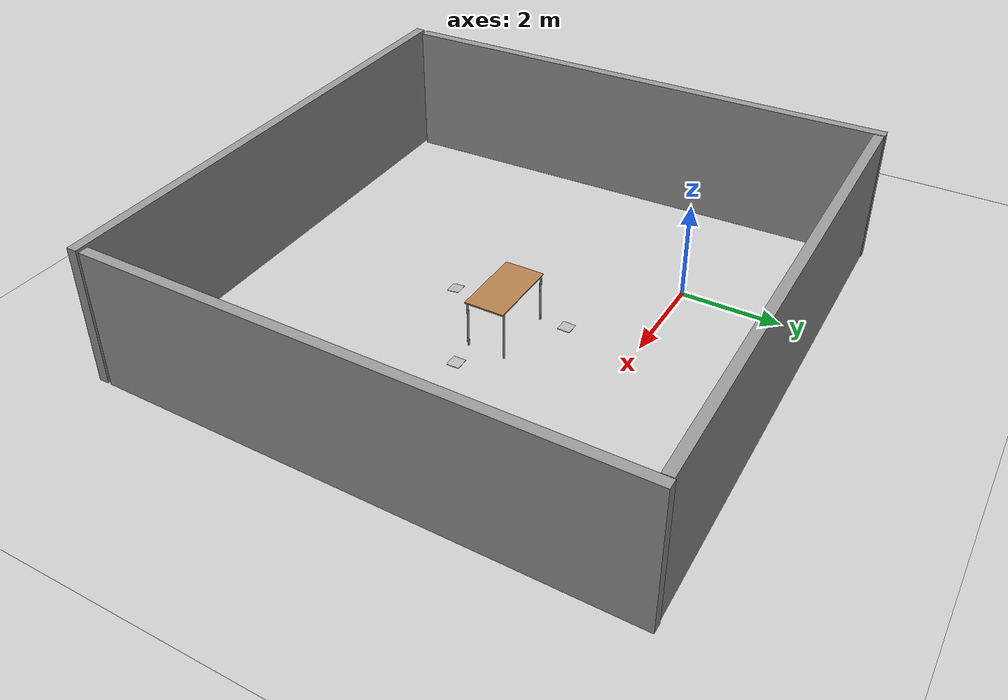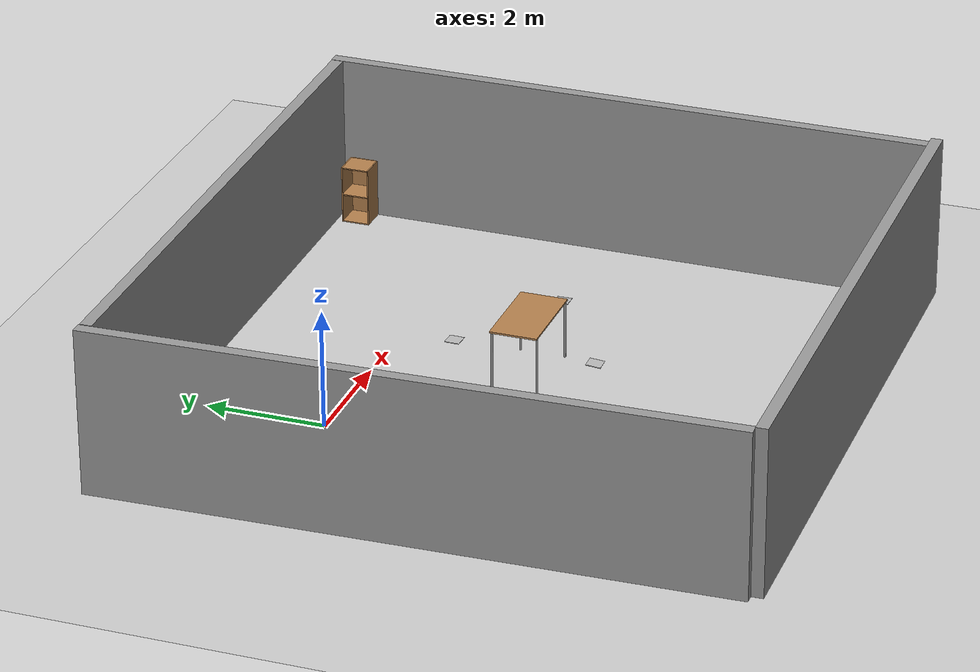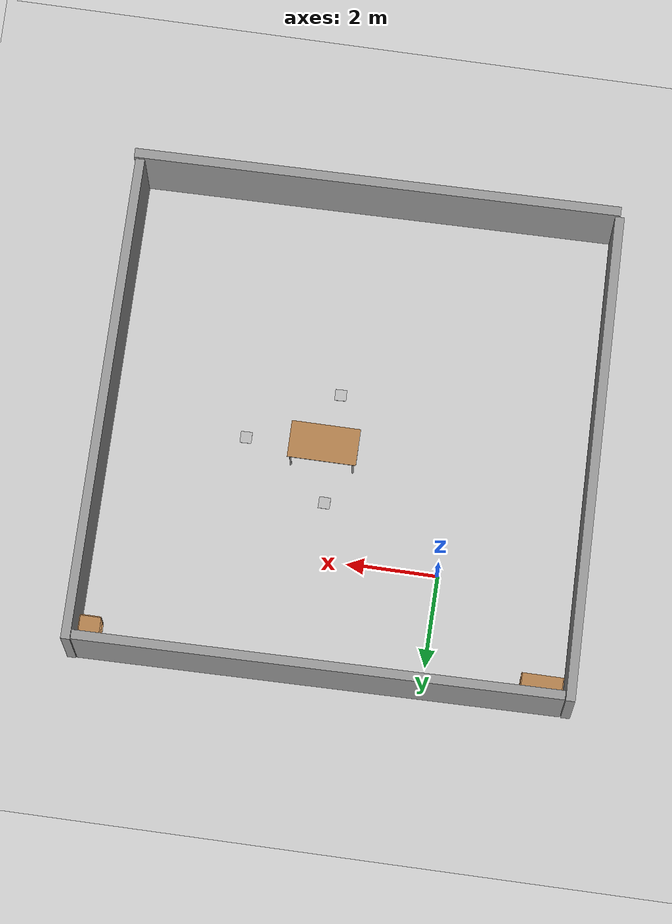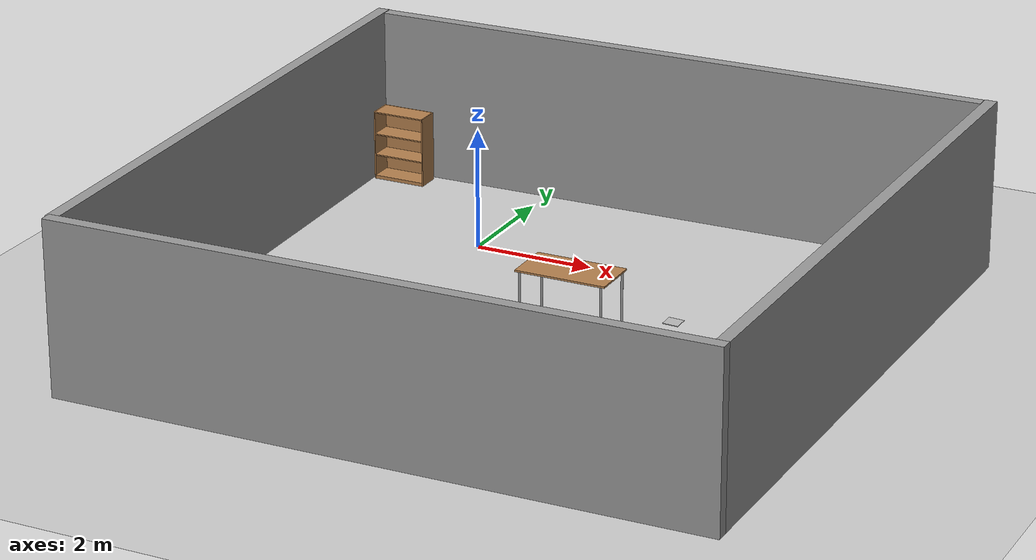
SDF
<sdf version="1.4">
 <world name="default">
  <plugin name="xbot2_clock" filename="libxbot2_gz_clock.so"/>
  <gravity>0 0 -9.81</gravity>
  <model name="ground_plane">
   <static>true</static>
   <link name="link">
    <collision name="collision">
     <geometry><plane><normal>0 0 1</normal><size>100 100</size></plane></geometry>
     <surface><friction><ode><mu>1</mu><mu2>1</mu2></ode></friction></surface>
    </collision>
    <visual name="visual">
     <cast_shadows>false</cast_shadows>
     <geometry><plane><normal>0 0 1</normal><size>100 100</size></plane></geometry>
     <material>
      <script><uri>file://media/materials/scripts/gazebo.material</uri><name>Gazebo/Grey</name></script>
     </material>
    </visual>
   </link>
  </model>
  <model name="Apriltag36_11_00000">
   <link name="main">
    <visual name="main_Visual">
     <geometry><box><size>0.25 0.25 0.01</size></box></geometry>
     <material>
      <script>
       <uri>model://Apriltag36_11_00000/materials/scripts</uri>
       <uri>model://Apriltag36_11_00000/materials/textures</uri>
       <name>Apriltag36_11_00000</name>
      </script>
     </material>
    </visual>
   </link>
   <static>1</static>
   <pose>2.61 -3.59993 0.456157 -3.04084 0 0.039</pose>
  </model>
  <model name="Apriltag36_11_00001">
   <link name="main">
    <visual name="main_Visual">
     <geometry><box><size>0.25 0.25 0.01</size></box></geometry>
     <material>
      <script>
       <uri>model://Apriltag36_11_00001/materials/scripts</uri>
       <uri>model://Apriltag36_11_00001/materials/textures</uri>
       <name>Apriltag36_11_00001</name>
      </script>
     </material>
    </visual>
   </link>
   <static>1</static>
   <pose>2.6349 -1.201776 0.454384 0.000466 0.009947 -0.0178</pose>
  </model>
  <model name="Apriltag36_11_00001">
   <pose>2.6349 -1.201776 0.454384 0.000466 0.009947 -0.0178</pose>
   <scale>1 1 1</scale>
   <link name="main">
    <pose>2.67069 -1.1249 0.464384 0 0.009878 0.0715</pose>
    <velocity>0 0 0 0 -0 0</velocity>
    <acceleration>0 0 0 0 -0 0</acceleration>
    <wrench>0 0 0 0 -0 0</wrench>
   </link>
  </model>
  <model name="Apriltag36_11_00002">
   <link name="main">
    <visual name="main_Visual">
     <geometry><box><size>0.25 0.25 0.01</size></box></geometry>
     <material>
      <script>
       <uri>model://Apriltag36_11_00002/materials/scripts</uri>
       <uri>model://Apriltag36_11_00002/materials/textures</uri>
       <name>Apriltag36_11_00002</name>
      </script>
     </material>
    </visual>
   </link>
   <static>1</static>
   <pose>4.51485 -2.39499 0.469182 -0.038 0.002418 -1.554151</pose>
  </model>
  <model name="Apriltag36_11_00002">
   <pose>4.51485 -2.39499 0.469182 -0.038 0.002418 -1.554151</pose>
   <scale>1 1 1</scale>
   <link name="main">
    <pose>4.51485 -2.39499 0.469182 0 0.038185 0</pose>
    <velocity>0 0 0 0 -0 0</velocity>
    <acceleration>0 0 0 0 -0 0</acceleration>
    <wrench>0 0 0 0 -0 0</wrench>
   </link>
  </model>
  <model name="grey_wall_1">
   <link name="link">
    <pose>1.87277 0 1.4 0 -0 0</pose>
    <inertial>
     <mass>1</mass>
     <inertia><ixx>1</ixx><ixy>0</ixy><ixz>0</ixz><iyy>1</iyy><iyz>0</iyz><izz>1</izz></inertia>
    </inertial>
    <visual name="visual">
     <cast_shadows>0</cast_shadows>
     <geometry><box><size>10.5 0.2 2.8</size></box></geometry>
     <material>
      <script>
       <uri>model://grey_wall/materials/scripts</uri>
       <uri>model://grey_wall/materials/textures</uri>
       <name>vrc/grey_wall</name>
      </script>
      <shader type="pixel"><normal_map>__default__</normal_map></shader>
      <ambient>1 1 1 1</ambient>
      <diffuse>1 1 1 1</diffuse>
      <specular>0 0 0 1</specular>
      <emissive>0 0 0 1</emissive>
     </material>
    </visual>
    <collision name="collision">
     <geometry><box><size>10.5 0.2 2.8</size></box></geometry>
     <surface>
      <friction>
       <ode><mu>1</mu><mu2>1</mu2><fdir1>0 0 0</fdir1><slip1>0</slip1><slip2>0</slip2></ode>
       <torsional>
        <coefficient>1</coefficient>
        <patch_radius>0</patch_radius>
        <surface_radius>0</surface_radius>
        <use_patch_radius>1</use_patch_radius>
        <ode><slip>0</slip></ode>
       </torsional>
      </friction>
      <bounce><restitution_coefficient>0</restitution_coefficient><threshold>1e+06</threshold></bounce>
      <contact>
       <collide_without_contact>0</collide_without_contact>
       <collide_without_contact_bitmask>1</collide_without_contact_bitmask>
       <collide_bitmask>1</collide_bitmask>
       <ode>
        <soft_cfm>0</soft_cfm>
        <soft_erp>0.2</soft_erp>
        <kp>1e+13</kp>
        <kd>1</kd>
        <max_vel>0.01</max_vel>
        <min_depth>0</min_depth>
       </ode>
       <bullet>
        <split_impulse>1</split_impulse>
        <split_impulse_penetration_threshold>-0.01</split_impulse_penetration_threshold>
        <soft_cfm>0</soft_cfm>
        <soft_erp>0.2</soft_erp>
        <kp>1e+13</kp>
        <kd>1</kd>
       </bullet>
      </contact>
     </surface>
    </collision>
   </link>
   <static>1</static>
   <pose>-3.04683 -0.70106 0 0 0 -1.54128</pose>
  </model>
  <model name="grey_wall_1_clone">
   <link name="link">
    <pose>1.87277 0 1.4 0 -0 0</pose>
    <inertial>
     <mass>1</mass>
     <inertia><ixx>1</ixx><ixy>0</ixy><ixz>0</ixz><iyy>1</iyy><iyz>0</iyz><izz>1</izz></inertia>
    </inertial>
    <visual name="visual">
     <cast_shadows>0</cast_shadows>
     <geometry><box><size>10.5 0.2 2.8</size></box></geometry>
     <material>
      <script>
       <uri>model://grey_wall/materials/scripts</uri>
       <uri>model://grey_wall/materials/textures</uri>
       <name>vrc/grey_wall</name>
      </script>
      <shader type="pixel"><normal_map>__default__</normal_map></shader>
      <ambient>1 1 1 1</ambient>
      <diffuse>1 1 1 1</diffuse>
      <specular>0 0 0 1</specular>
      <emissive>0 0 0 1</emissive>
     </material>
    </visual>
    <collision name="collision">
     <geometry><box><size>10.5 0.2 2.8</size></box></geometry>
     <surface>
      <friction>
       <ode><mu>1</mu><mu2>1</mu2><fdir1>0 0 0</fdir1><slip1>0</slip1><slip2>0</slip2></ode>
       <torsional>
        <coefficient>1</coefficient>
        <patch_radius>0</patch_radius>
        <surface_radius>0</surface_radius>
        <use_patch_radius>1</use_patch_radius>
        <ode><slip>0</slip></ode>
       </torsional>
      </friction>
      <bounce><restitution_coefficient>0</restitution_coefficient><threshold>1e+06</threshold></bounce>
      <contact>
       <collide_without_contact>0</collide_without_contact>
       <collide_without_contact_bitmask>1</collide_without_contact_bitmask>
       <collide_bitmask>1</collide_bitmask>
       <ode>
        <soft_cfm>0</soft_cfm>
        <soft_erp>0.2</soft_erp>
        <kp>1e+13</kp>
        <kd>1</kd>
        <max_vel>0.01</max_vel>
        <min_depth>0</min_depth>
       </ode>
       <bullet>
        <split_impulse>1</split_impulse>
        <split_impulse_penetration_threshold>-0.01</split_impulse_penetration_threshold>
        <soft_cfm>0</soft_cfm>
        <soft_erp>0.2</soft_erp>
        <kp>1e+13</kp>
        <kd>1</kd>
       </bullet>
      </contact>
     </surface>
    </collision>
   </link>
   <static>1</static>
   <pose>7.56067 -0.550665 0 0 0 -1.57695</pose>
  </model>
  <model name="grey_wall_1_clone_0">
   <link name="link">
    <pose>1.87277 0 1.4 0 -0 0</pose>
    <inertial>
     <mass>1</mass>
     <inertia><ixx>1</ixx><ixy>0</ixy><ixz>0</ixz><iyy>1</iyy><iyz>0</iyz><izz>1</izz></inertia>
    </inertial>
    <visual name="visual">
     <cast_shadows>0</cast_shadows>
     <geometry><box><size>10.5 0.2 2.8</size></box></geometry>
     <material>
      <script>
       <uri>model://grey_wall/materials/scripts</uri>
       <uri>model://grey_wall/materials/textures</uri>
       <name>vrc/grey_wall</name>
      </script>
      <shader type="pixel"><normal_map>__default__</normal_map></shader>
      <ambient>1 1 1 1</ambient>
      <diffuse>1 1 1 1</diffuse>
      <specular>0 0 0 1</specular>
      <emissive>0 0 0 1</emissive>
     </material>
    </visual>
    <collision name="collision">
     <geometry><box><size>10.5 0.2 2.8</size></box></geometry>
     <surface>
      <friction>
       <ode><mu>1</mu><mu2>1</mu2><fdir1>0 0 0</fdir1><slip1>0</slip1><slip2>0</slip2></ode>
       <torsional>
        <coefficient>1</coefficient>
        <patch_radius>0</patch_radius>
        <surface_radius>0</surface_radius>
        <use_patch_radius>1</use_patch_radius>
        <ode><slip>0</slip></ode>
       </torsional>
      </friction>
      <bounce><restitution_coefficient>0</restitution_coefficient><threshold>1e+06</threshold></bounce>
      <contact>
       <collide_without_contact>0</collide_without_contact>
       <collide_without_contact_bitmask>1</collide_without_contact_bitmask>
       <collide_bitmask>1</collide_bitmask>
       <ode>
        <soft_cfm>0</soft_cfm>
        <soft_erp>0.2</soft_erp>
        <kp>1e+13</kp>
        <kd>1</kd>
        <max_vel>0.01</max_vel>
        <min_depth>0</min_depth>
       </ode>
       <bullet>
        <split_impulse>1</split_impulse>
        <split_impulse_penetration_threshold>-0.01</split_impulse_penetration_threshold>
        <soft_cfm>0</soft_cfm>
        <soft_erp>0.2</soft_erp>
        <kp>1e+13</kp>
        <kd>1</kd>
       </bullet>
      </contact>
     </surface>
    </collision>
   </link>
   <static>1</static>
   <pose>0.529665 -7.88689 0.045155 0 -0 0.013786</pose>
  </model>
  <model name="grey_wall_1_clone_0_clone">
   <link name="link">
    <pose>1.87277 0 1.4 0 -0 0</pose>
    <inertial>
     <mass>1</mass>
     <inertia><ixx>1</ixx><ixy>0</ixy><ixz>0</ixz><iyy>1</iyy><iyz>0</iyz><izz>1</izz></inertia>
    </inertial>
    <visual name="visual">
     <cast_shadows>0</cast_shadows>
     <geometry><box><size>10.5 0.2 2.8</size></box></geometry>
     <material>
      <script>
       <uri>model://grey_wall/materials/scripts</uri>
       <uri>model://grey_wall/materials/textures</uri>
       <name>vrc/grey_wall</name>
      </script>
      <shader type="pixel"><normal_map>__default__</normal_map></shader>
      <ambient>1 1 1 1</ambient>
      <diffuse>1 1 1 1</diffuse>
      <specular>0 0 0 1</specular>
      <emissive>0 0 0 1</emissive>
     </material>
    </visual>
    <collision name="collision">
     <geometry><box><size>10.5 0.2 2.8</size></box></geometry>
     <surface>
      <friction>
       <ode><mu>1</mu><mu2>1</mu2><fdir1>0 0 0</fdir1><slip1>0</slip1><slip2>0</slip2></ode>
       <torsional>
        <coefficient>1</coefficient>
        <patch_radius>0</patch_radius>
        <surface_radius>0</surface_radius>
        <use_patch_radius>1</use_patch_radius>
        <ode><slip>0</slip></ode>
       </torsional>
      </friction>
      <bounce><restitution_coefficient>0</restitution_coefficient><threshold>1e+06</threshold></bounce>
      <contact>
       <collide_without_contact>0</collide_without_contact>
       <collide_without_contact_bitmask>1</collide_without_contact_bitmask>
       <collide_bitmask>1</collide_bitmask>
       <ode>
        <soft_cfm>0</soft_cfm>
        <soft_erp>0.2</soft_erp>
        <kp>1e+13</kp>
        <kd>1</kd>
        <max_vel>0.01</max_vel>
        <min_depth>0</min_depth>
       </ode>
       <bullet>
        <split_impulse>1</split_impulse>
        <split_impulse_penetration_threshold>-0.01</split_impulse_penetration_threshold>
        <soft_cfm>0</soft_cfm>
        <soft_erp>0.2</soft_erp>
        <kp>1e+13</kp>
        <kd>1</kd>
       </bullet>
      </contact>
     </surface>
    </collision>
   </link>
   <static>1</static>
   <pose>0.350129 2.61091 0 0 -0 0.013786</pose>
  </model>
  <model name="table">
   <static>1</static>
   <link name="link">
    <collision name="surface">
     <pose>0 0 1 0 -0 0</pose>
     <geometry><box><size>1.5 0.8 0.03</size></box></geometry>
     <surface><friction><ode><mu>0.6</mu><mu2>0.6</mu2></ode></friction></surface>
    </collision>
    <visual name="visual1">
     <pose>0 0 1 0 -0 0</pose>
     <geometry><box><size>1.5 0.8 0.03</size></box></geometry>
     <material>
      <script><uri>file://media/materials/scripts/gazebo.material</uri><name>Gazebo/Wood</name></script>
     </material>
    </visual>
    <collision name="front_left_leg">
     <pose>0.68 0.38 0.5 0 -0 0</pose>
     <geometry><cylinder><radius>0.02</radius><length>1</length></cylinder></geometry>
    </collision>
    <visual name="front_left_leg">
     <pose>0.68 0.38 0.5 0 -0 0</pose>
     <geometry><cylinder><radius>0.02</radius><length>1</length></cylinder></geometry>
     <material>
      <script><uri>file://media/materials/scripts/gazebo.material</uri><name>Gazebo/Grey</name></script>
     </material>
    </visual>
    <collision name="front_right_leg">
     <pose>0.68 -0.38 0.5 0 -0 0</pose>
     <geometry><cylinder><radius>0.02</radius><length>1</length></cylinder></geometry>
    </collision>
    <visual name="front_right_leg">
     <pose>0.68 -0.38 0.5 0 -0 0</pose>
     <geometry><cylinder><radius>0.02</radius><length>1</length></cylinder></geometry>
     <material>
      <script><uri>file://media/materials/scripts/gazebo.material</uri><name>Gazebo/Grey</name></script>
     </material>
    </visual>
    <collision name="back_right_leg">
     <pose>-0.68 -0.38 0.5 0 -0 0</pose>
     <geometry><cylinder><radius>0.02</radius><length>1</length></cylinder></geometry>
    </collision>
    <visual name="back_right_leg">
     <pose>-0.68 -0.38 0.5 0 -0 0</pose>
     <geometry><cylinder><radius>0.02</radius><length>1</length></cylinder></geometry>
     <material>
      <script><uri>file://media/materials/scripts/gazebo.material</uri><name>Gazebo/Grey</name></script>
     </material>
    </visual>
    <collision name="back_left_leg">
     <pose>-0.68 0.38 0.5 0 -0 0</pose>
     <geometry><cylinder><radius>0.02</radius><length>1</length></cylinder></geometry>
    </collision>
    <visual name="back_left_leg">
     <pose>-0.68 0.38 0.5 0 -0 0</pose>
     <geometry><cylinder><radius>0.02</radius><length>1</length></cylinder></geometry>
     <material>
      <script><uri>file://media/materials/scripts/gazebo.material</uri><name>Gazebo/Grey</name></script>
     </material>
    </visual>
   </link>
   <pose>2.81 -2.40546 0 0 -0 0</pose>
  </model>
  <model name="bookshelf">
   <static>1</static>
   <link name="link">
    <inertial><mass>1</mass></inertial>
    <collision name="back">
     <pose>0 0.005 0.6 0 -0 0</pose>
     <geometry><box><size>0.9 0.01 1.2</size></box></geometry>
    </collision>
    <visual name="visual1">
     <pose>0 0.005 0.6 0 -0 0</pose>
     <geometry><box><size>0.9 0.01 1.2</size></box></geometry>
     <material>
      <script><uri>file://media/materials/scripts/gazebo.material</uri><name>Gazebo/Wood</name></script>
     </material>
    </visual>
    <collision name="left_side">
     <pose>0.45 -0.195 0.6 0 -0 0</pose>
     <geometry><box><size>0.02 0.4 1.2</size></box></geometry>
    </collision>
    <visual name="visual2">
     <pose>0.45 -0.195 0.6 0 -0 0</pose>
     <geometry><box><size>0.02 0.4 1.2</size></box></geometry>
     <material>
      <script><uri>file://media/materials/scripts/gazebo.material</uri><name>Gazebo/Wood</name></script>
     </material>
    </visual>
    <collision name="right_side">
     <pose>-0.45 -0.195 0.6 0 -0 0</pose>
     <geometry><box><size>0.02 0.4 1.2</size></box></geometry>
    </collision>
    <visual name="visual3">
     <pose>-0.45 -0.195 0.6 0 -0 0</pose>
     <geometry><box><size>0.02 0.4 1.2</size></box></geometry>
     <material>
      <script><uri>file://media/materials/scripts/gazebo.material</uri><name>Gazebo/Wood</name></script>
     </material>
    </visual>
    <collision name="bottom">
     <pose>0 -0.195 0.03 0 -0 0</pose>
     <geometry><box><size>0.88 0.4 0.06</size></box></geometry>
    </collision>
    <visual name="visual4">
     <pose>0 -0.195 0.03 0 -0 0</pose>
     <geometry><box><size>0.88 0.4 0.06</size></box></geometry>
     <material>
      <script><uri>file://media/materials/scripts/gazebo.material</uri><name>Gazebo/Wood</name></script>
     </material>
    </visual>
    <collision name="top">
     <pose>0 -0.195 1.19 0 -0 0</pose>
     <geometry><box><size>0.88 0.4 0.02</size></box></geometry>
    </collision>
    <visual name="visual5">
     <pose>0 -0.195 1.19 0 -0 0</pose>
     <geometry><box><size>0.88 0.4 0.02</size></box></geometry>
     <material>
      <script><uri>file://media/materials/scripts/gazebo.material</uri><name>Gazebo/Wood</name></script>
     </material>
    </visual>
    <collision name="low_shelf">
     <pose>0 -0.195 0.43 0 -0 0</pose>
     <geometry><box><size>0.88 0.4 0.02</size></box></geometry>
    </collision>
    <visual name="visual6">
     <pose>0 -0.195 0.43 0 -0 0</pose>
     <geometry><box><size>0.88 0.4 0.02</size></box></geometry>
     <material>
      <script><uri>file://media/materials/scripts/gazebo.material</uri><name>Gazebo/Wood</name></script>
     </material>
    </visual>
    <collision name="high_shelf">
     <pose>0 -0.195 0.8 0 -0 0</pose>
     <geometry><box><size>0.88 0.4 0.02</size></box></geometry>
    </collision>
    <visual name="visual7">
     <pose>0 -0.195 0.8 0 -0 0</pose>
     <geometry><box><size>0.88 0.4 0.02</size></box></geometry>
     <material>
      <script><uri>file://media/materials/scripts/gazebo.material</uri><name>Gazebo/Wood</name></script>
     </material>
    </visual>
   </link>
   <pose>-2.53357 2.37657 0 0 -0 0</pose>
  </model>
  <model name="cabinet">
   <static>1</static>
   <link name="cabinet_bottom_plate">
    <inertial>
     <pose>0 0 -1 0 -0 0</pose>
     <inertia><ixx>2.05</ixx><ixy>0</ixy><ixz>0</ixz><iyy>2.05</iyy><iyz>0</iyz><izz>2.05</izz></inertia>
     <mass>25</mass>
    </inertial>
    <collision name="cabinet_bottom_plate_geom">
     <pose>0 0 0.01 0 -0 0</pose>
     <geometry><box><size>0.45 0.45 0.02</size></box></geometry>
    </collision>
    <visual name="cabinet_bottom_plate_geom_visual">
     <pose>0 0 0.01 0 -0 0</pose>
     <geometry><box><size>0.45 0.45 0.02</size></box></geometry>
     <material>
      <script><uri>file://media/materials/scripts/gazebo.material</uri><name>Gazebo/Wood</name></script>
     </material>
    </visual>
    <collision name="cabinet_bottom_plate_geom_cabinet_back_plate">
     <pose>0.235 0 0.51 0 -0 0</pose>
     <geometry><box><size>0.02 0.45 1.02</size></box></geometry>
    </collision>
    <visual name="cabinet_bottom_plate_geom_cabinet_back_plate_visual">
     <pose>0.235 0 0.51 0 -0 0</pose>
     <geometry><box><size>0.02 0.45 1.02</size></box></geometry>
     <material>
      <script><uri>file://media/materials/scripts/gazebo.material</uri><name>Gazebo/Wood</name></script>
     </material>
    </visual>
    <collision name="cabinet_bottom_plate_geom_cabinet_left_plate">
     <pose>0 0.235 0.51 0 -0 0</pose>
     <geometry><box><size>0.45 0.02 1.02</size></box></geometry>
    </collision>
    <visual name="cabinet_bottom_plate_geom_cabinet_left_plate_visual">
     <pose>0 0.235 0.51 0 -0 0</pose>
     <geometry><box><size>0.45 0.02 1.02</size></box></geometry>
     <material>
      <script><uri>file://media/materials/scripts/gazebo.material</uri><name>Gazebo/Wood</name></script>
     </material>
    </visual>
    <collision name="cabinet_bottom_plate_geom_cabinet_middle_plate">
     <pose>0 0 0.51 0 -0 0</pose>
     <geometry><box><size>0.45 0.45 0.02</size></box></geometry>
    </collision>
    <visual name="cabinet_bottom_plate_geom_cabinet_middle_plate_visual">
     <pose>0 0 0.51 0 -0 0</pose>
     <geometry><box><size>0.45 0.45 0.02</size></box></geometry>
     <material>
      <script><uri>file://media/materials/scripts/gazebo.material</uri><name>Gazebo/Wood</name></script>
     </material>
    </visual>
    <collision name="cabinet_bottom_plate_geom_cabinet_right_plate">
     <pose>0 -0.235 0.51 0 -0 0</pose>
     <geometry><box><size>0.45 0.02 1.02</size></box></geometry>
    </collision>
    <visual name="cabinet_bottom_plate_geom_cabinet_right_plate_visual">
     <pose>0 -0.235 0.51 0 -0 0</pose>
     <geometry><box><size>0.45 0.02 1.02</size></box></geometry>
     <material>
      <script><uri>file://media/materials/scripts/gazebo.material</uri><name>Gazebo/Wood</name></script>
     </material>
    </visual>
    <collision name="cabinet_bottom_plate_geom_cabinet_top_plate">
     <pose>0 0 1.01 0 -0 0</pose>
     <geometry><box><size>0.45 0.45 0.02</size></box></geometry>
    </collision>
    <visual name="cabinet_bottom_plate_geom_cabinet_top_plate_visual">
     <pose>0 0 1.01 0 -0 0</pose>
     <geometry><box><size>0.45 0.45 0.02</size></box></geometry>
     <material>
      <script><uri>file://media/materials/scripts/gazebo.material</uri><name>Gazebo/Wood</name></script>
     </material>
    </visual>
   </link>
   <pose>7.23722 2.25243 0 0 -0 0</pose>
  </model>
  <include><uri>model://sun</uri></include>
  <physics name="update_rate" type="ode">
   <real_time_update_rate>4000</real_time_update_rate>
   <max_step_size>0.00025</max_step_size>
   <max_contacts>5</max_contacts>
   <bullet>
    <solver><iters>100</iters><sor>1.55</sor></solver>
    <constraints><contact_surface_layer>0.2</contact_surface_layer><cfm>0.005</cfm><erp>0.2</erp></constraints>
   </bullet>
   <ode>
    <solver><iters>50</iters><sor>1.20</sor></solver>
    <constraints>
     <contact_surface_layer>0.0002</contact_surface_layer>
     <contact_max_correcting_vel>500</contact_max_correcting_vel>
     <cfm>0.000001</cfm>
     <erp>0.3</erp>
    </constraints>
   </ode>
  </physics>
 </world>
</sdf>
